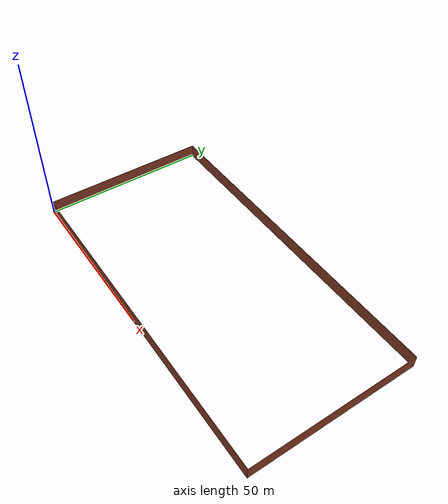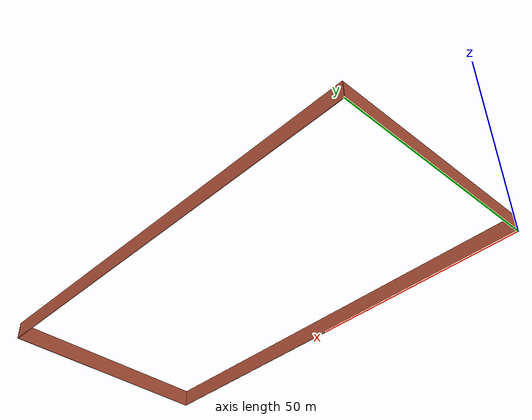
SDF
<?xml version='1.0'?>
<sdf version='1.6'>
  <model name='outer_wall'>
    <pose frame=''>50 25 0 0 -0 0</pose>
    <link name='Wall_12'>
      <collision name='Wall_12_Collision'>
        <geometry>
          <box>
            <size>100.15 0.15 4</size>
          </box>
        </geometry>
        <pose frame=''>0 0 2 0 -0 0</pose>
      </collision>
      <visual name='Wall_12_Visual'>
        <pose frame=''>0 0 2 0 -0 0</pose>
        <geometry>
          <box>
            <size>100.15 0.15 4</size>
          </box>
        </geometry>
        <material>
          <script>
            <uri>file://media/materials/scripts/gazebo.material</uri>
            <name>Gazebo/Bricks</name>
          </script>
          <ambient>1 1 1 1</ambient>
        </material>
        <meta>
          <layer>0</layer>
        </meta>
      </visual>
      <pose frame=''>-1e-06 -25 0 0 -0 0</pose>
    </link>
    <link name='Wall_13'>
      <collision name='Wall_13_Collision'>
        <geometry>
          <box>
            <size>50.15 0.15 4</size>
          </box>
        </geometry>
        <pose frame=''>0 0 2 0 -0 0</pose>
      </collision>
      <visual name='Wall_13_Visual'>
        <pose frame=''>0 0 2 0 -0 0</pose>
        <geometry>
          <box>
            <size>50.15 0.15 4</size>
          </box>
        </geometry>
        <material>
          <script>
            <uri>file://media/materials/scripts/gazebo.material</uri>
            <name>Gazebo/Bricks</name>
          </script>
          <ambient>1 1 1 1</ambient>
        </material>
        <meta>
          <layer>0</layer>
        </meta>
      </visual>
      <pose frame=''>50 -1e-06 0 0 -0 1.5708</pose>
    </link>
    <link name='Wall_14'>
      <collision name='Wall_14_Collision'>
        <geometry>
          <box>
            <size>100.15 0.15 4</size>
          </box>
        </geometry>
        <pose frame=''>0 0 2 0 -0 0</pose>
      </collision>
      <visual name='Wall_14_Visual'>
        <pose frame=''>0 0 2 0 -0 0</pose>
        <geometry>
          <box>
            <size>100.15 0.15 4</size>
          </box>
        </geometry>
        <material>
          <script>
            <uri>file://media/materials/scripts/gazebo.material</uri>
            <name>Gazebo/Bricks</name>
          </script>
          <ambient>1 1 1 1</ambient>
        </material>
        <meta>
          <layer>0</layer>
        </meta>
      </visual>
      <pose frame=''>-1e-06 25 0 0 -0 3.14159</pose>
    </link>
    <link name='Wall_15'>
      <collision name='Wall_15_Collision'>
        <geometry>
          <box>
            <size>50.15 0.15 4</size>
          </box>
        </geometry>
        <pose frame=''>0 0 2 0 -0 0</pose>
      </collision>
      <visual name='Wall_15_Visual'>
        <pose frame=''>0 0 2 0 -0 0</pose>
        <geometry>
          <box>
            <size>50.15 0.15 4</size>
          </box>
        </geometry>
        <material>
          <script>
            <uri>file://media/materials/scripts/gazebo.material</uri>
            <name>Gazebo/Bricks</name>
          </script>
          <ambient>1 1 1 1</ambient>
        </material>
        <meta>
          <layer>0</layer>
        </meta>
      </visual>
      <pose frame=''>-50 -1e-06 0 0 -0 -1.5708</pose>
    </link>
    <static>1</static>
  </model>
</sdf>
